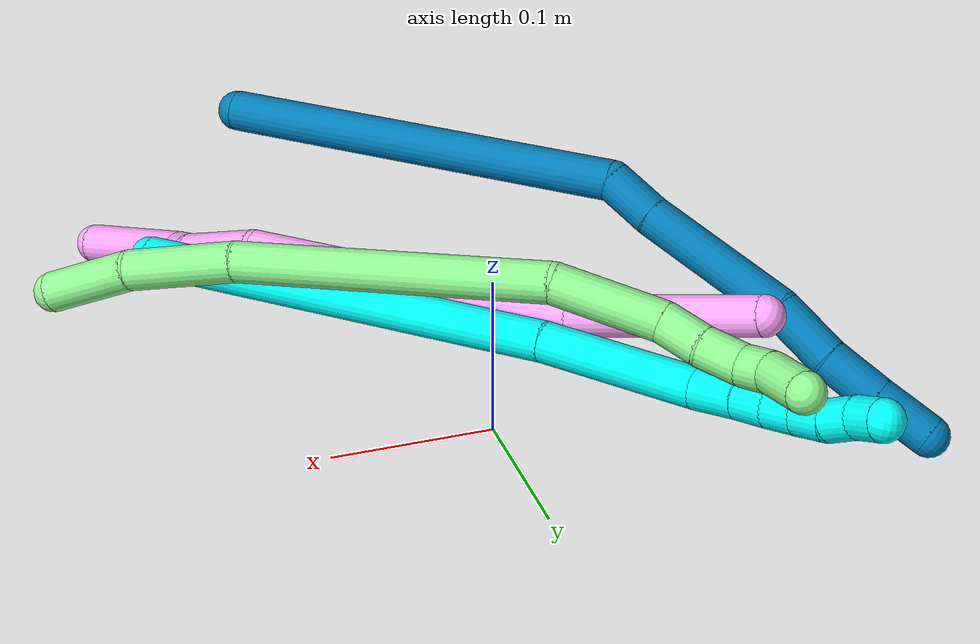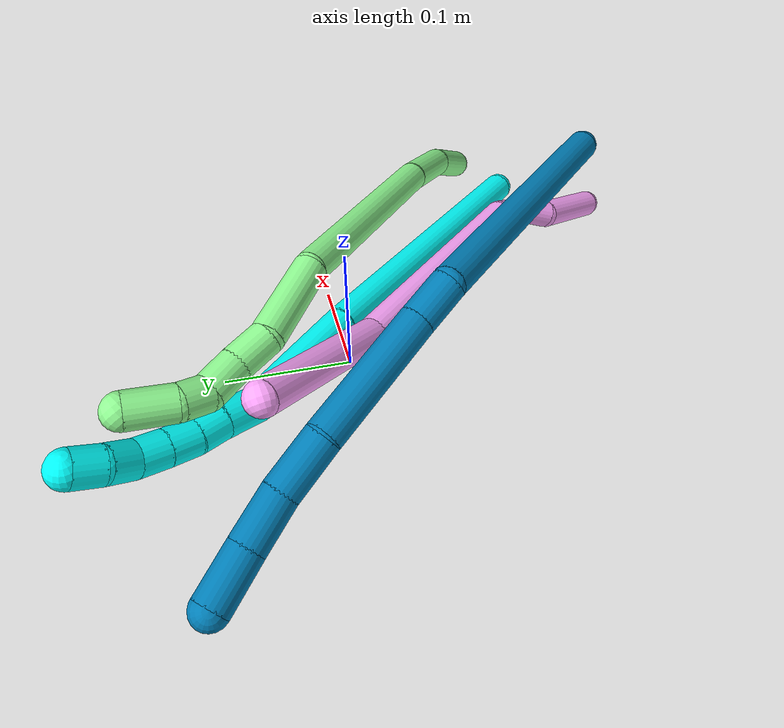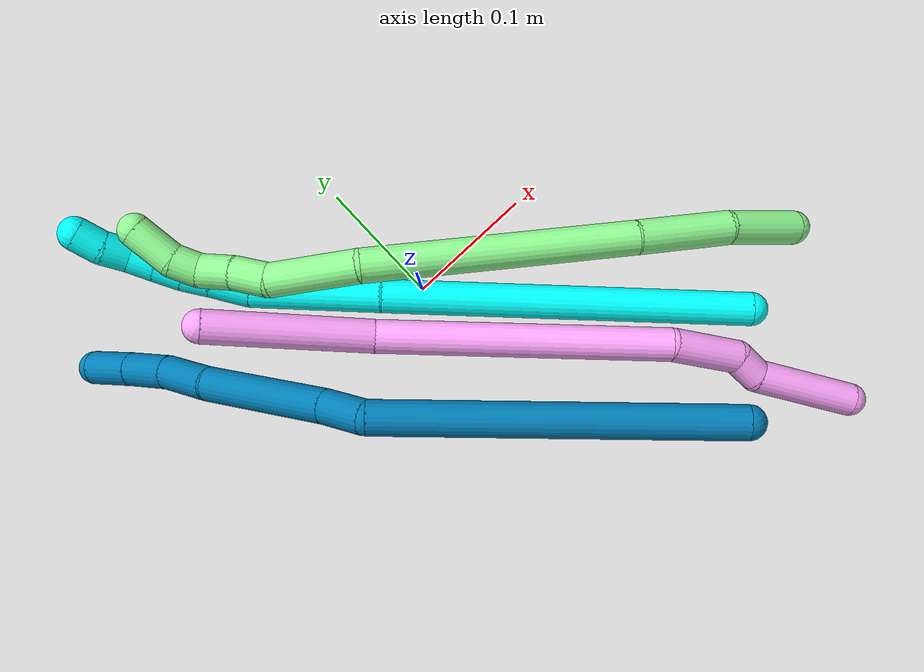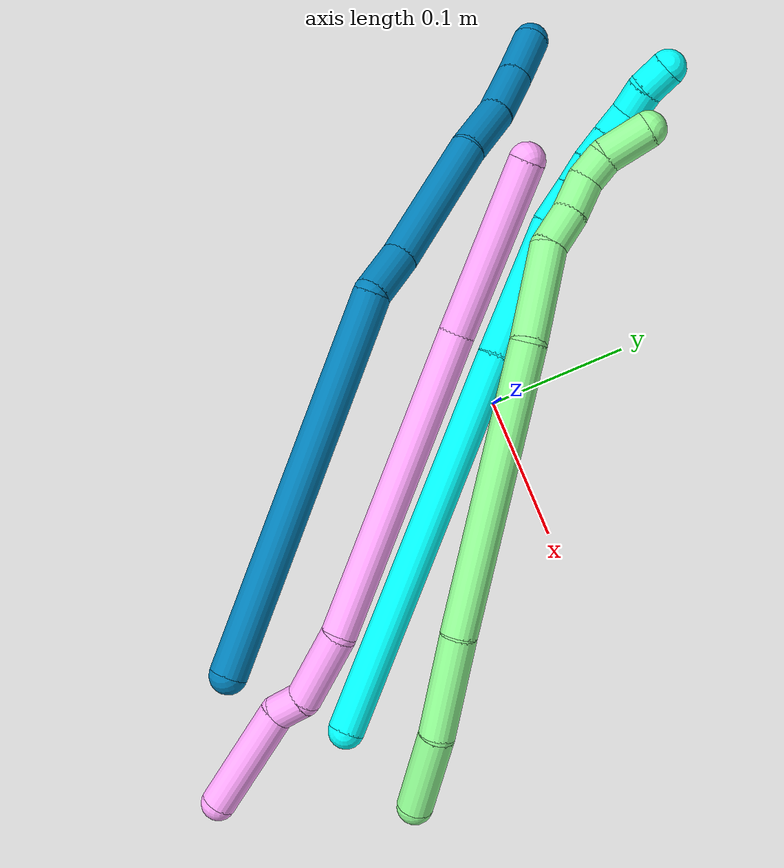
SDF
<sdf version="1.7">
 <world name="default">
  <model name="3">
   <static>0</static>
   <link name="3">
    <collision name="collision-cylinder-e_1_1_4">
     <pose>-0.044812 0.126976 0.019544 -1.41808 -0.335616 0.288624</pose>
     <geometry><cylinder><radius>0.0125</radius><length>0.272125</length></cylinder></geometry>
     <surface>
      <friction><ode><mu>1.16</mu><mu2>1.16</mu2><slip1>0</slip1><slip2>0</slip2></ode></friction>
      <contact><ode><kp>1e+06</kp><kd>1</kd><max_vel>0</max_vel><min_depth>0.001</min_depth></ode></contact>
     </surface>
    </collision>
    <visual name="visual-cylinder-e_1_1_4">
     <pose>-0.044812 0.126976 0.019544 -1.41808 -0.335616 0.288624</pose>
     <geometry><cylinder><radius>0.0125</radius><length>0.272125</length></cylinder></geometry>
     <material><ambient>0.003922 1 0.996078 1</ambient></material>
    </visual>
    <collision name="collision-cylinder-e_2_4_5">
     <pose>-0.105696 0.299578 0.042015 -1.50672 -0.338026 0.317394</pose>
     <geometry><cylinder><radius>0.0125</radius><length>0.096925</length></cylinder></geometry>
     <surface>
      <friction><ode><mu>1.16</mu><mu2>1.16</mu2><slip1>0</slip1><slip2>0</slip2></ode></friction>
      <contact><ode><kp>1e+06</kp><kd>1</kd><max_vel>0</max_vel><min_depth>0.001</min_depth></ode></contact>
     </surface>
    </collision>
    <visual name="visual-cylinder-e_2_4_5">
     <pose>-0.105696 0.299578 0.042015 -1.50672 -0.338026 0.317394</pose>
     <geometry><cylinder><radius>0.0125</radius><length>0.096925</length></cylinder></geometry>
     <material><ambient>0.003922 1 0.996078 1</ambient></material>
    </visual>
    <collision name="collision-cylinder-e_3_5_6">
     <pose>-0.123361 0.359535 0.048272 -1.34249 -0.107921 0.08575</pose>
     <geometry><cylinder><radius>0.0125</radius><length>0.029596</length></cylinder></geometry>
     <surface>
      <friction><ode><mu>1.16</mu><mu2>1.16</mu2><slip1>0</slip1><slip2>0</slip2></ode></friction>
      <contact><ode><kp>1e+06</kp><kd>1</kd><max_vel>0</max_vel><min_depth>0.001</min_depth></ode></contact>
     </surface>
    </collision>
    <visual name="visual-cylinder-e_3_5_6">
     <pose>-0.123361 0.359535 0.048272 -1.34249 -0.107921 0.08575</pose>
     <geometry><cylinder><radius>0.0125</radius><length>0.029596</length></cylinder></geometry>
     <material><ambient>0.003922 1 0.996078 1</ambient></material>
    </visual>
    <collision name="collision-cylinder-e_4_6_7">
     <pose>-0.126472 0.38377 0.053252 -1.4057 -0.149963 0.127111</pose>
     <geometry><cylinder><radius>0.0125</radius><length>0.020311</length></cylinder></geometry>
     <surface>
      <friction><ode><mu>1.16</mu><mu2>1.16</mu2><slip1>0</slip1><slip2>0</slip2></ode></friction>
      <contact><ode><kp>1e+06</kp><kd>1</kd><max_vel>0</max_vel><min_depth>0.001</min_depth></ode></contact>
     </surface>
    </collision>
    <visual name="visual-cylinder-e_4_6_7">
     <pose>-0.126472 0.38377 0.053252 -1.4057 -0.149963 0.127111</pose>
     <geometry><cylinder><radius>0.0125</radius><length>0.020311</length></cylinder></geometry>
     <material><ambient>0.003922 1 0.996078 1</ambient></material>
    </visual>
    <collision name="collision-cylinder-e_5_7_8">
     <pose>-0.128306 0.403672 0.057392 -1.32678 -0.030734 0.024021</pose>
     <geometry><cylinder><radius>0.0125</radius><length>0.020615</length></cylinder></geometry>
     <surface>
      <friction><ode><mu>1.16</mu><mu2>1.16</mu2><slip1>0</slip1><slip2>0</slip2></ode></friction>
      <contact><ode><kp>1e+06</kp><kd>1</kd><max_vel>0</max_vel><min_depth>0.001</min_depth></ode></contact>
     </surface>
    </collision>
    <visual name="visual-cylinder-e_5_7_8">
     <pose>-0.128306 0.403672 0.057392 -1.32678 -0.030734 0.024021</pose>
     <geometry><cylinder><radius>0.0125</radius><length>0.020615</length></cylinder></geometry>
     <material><ambient>0.003922 1 0.996078 1</ambient></material>
    </visual>
    <collision name="collision-cylinder-e_6_8_9">
     <pose>-0.128672 0.423355 0.062583 -1.2987 -0.004888 0.003711</pose>
     <geometry><cylinder><radius>0.0125</radius><length>0.020111</length></cylinder></geometry>
     <surface>
      <friction><ode><mu>1.16</mu><mu2>1.16</mu2><slip1>0</slip1><slip2>0</slip2></ode></friction>
      <contact><ode><kp>1e+06</kp><kd>1</kd><max_vel>0</max_vel><min_depth>0.001</min_depth></ode></contact>
     </surface>
    </collision>
    <visual name="visual-cylinder-e_6_8_9">
     <pose>-0.128672 0.423355 0.062583 -1.2987 -0.004888 0.003711</pose>
     <geometry><cylinder><radius>0.0125</radius><length>0.020111</length></cylinder></geometry>
     <material><ambient>0.003922 1 0.996078 1</ambient></material>
    </visual>
    <collision name="collision-cylinder-e_7_9_10">
     <pose>-0.129135 0.441642 0.070472 -1.02819 -0.041135 0.023233</pose>
     <geometry><cylinder><radius>0.0125</radius><length>0.020105</length></cylinder></geometry>
     <surface>
      <friction><ode><mu>1.16</mu><mu2>1.16</mu2><slip1>0</slip1><slip2>0</slip2></ode></friction>
      <contact><ode><kp>1e+06</kp><kd>1</kd><max_vel>0</max_vel><min_depth>0.001</min_depth></ode></contact>
     </surface>
    </collision>
    <visual name="visual-cylinder-e_7_9_10">
     <pose>-0.129135 0.441642 0.070472 -1.02819 -0.041135 0.023233</pose>
     <geometry><cylinder><radius>0.0125</radius><length>0.020105</length></cylinder></geometry>
     <material><ambient>0.003922 1 0.996078 1</ambient></material>
    </visual>
    <collision name="collision-cylinder-e_8_10_2">
     <pose>-0.127817 0.459389 0.079594 -1.16448 0.172121 -0.113479</pose>
     <geometry><cylinder><radius>0.0125</radius><length>0.020212</length></cylinder></geometry>
     <surface>
      <friction><ode><mu>1.16</mu><mu2>1.16</mu2><slip1>0</slip1><slip2>0</slip2></ode></friction>
      <contact><ode><kp>1e+06</kp><kd>1</kd><max_vel>0</max_vel><min_depth>0.001</min_depth></ode></contact>
     </surface>
    </collision>
    <visual name="visual-cylinder-e_8_10_2">
     <pose>-0.127817 0.459389 0.079594 -1.16448 0.172121 -0.113479</pose>
     <geometry><cylinder><radius>0.0125</radius><length>0.020212</length></cylinder></geometry>
     <material><ambient>0.003922 1 0.996078 1</ambient></material>
    </visual>
    <collision name="collision-sphere-2">
     <pose>-0.126086 0.468535 0.083529 0 -0 0</pose>
     <geometry><sphere><radius>0.0125</radius></sphere></geometry>
     <surface>
      <friction><ode><mu>1.16</mu><mu2>1.16</mu2><slip1>0</slip1><slip2>0</slip2></ode></friction>
      <contact><ode><kp>1e+06</kp><kd>1</kd><max_vel>0</max_vel><min_depth>0.001</min_depth></ode></contact>
     </surface>
    </collision>
    <visual name="visual-sphere-2">
     <pose>-0.126086 0.468535 0.083529 0 -0 0</pose>
     <geometry><sphere><radius>0.0125</radius></sphere></geometry>
     <material><ambient>0.003922 1 0.996078 1</ambient></material>
    </visual>
    <collision name="collision-sphere-10">
     <pose>-0.129548 0.450243 0.075658 0 -0 0</pose>
     <geometry><sphere><radius>0.0125</radius></sphere></geometry>
     <surface>
      <friction><ode><mu>1.16</mu><mu2>1.16</mu2><slip1>0</slip1><slip2>0</slip2></ode></friction>
      <contact><ode><kp>1e+06</kp><kd>1</kd><max_vel>0</max_vel><min_depth>0.001</min_depth></ode></contact>
     </surface>
    </collision>
    <visual name="visual-sphere-10">
     <pose>-0.129548 0.450243 0.075658 0 -0 0</pose>
     <geometry><sphere><radius>0.0125</radius></sphere></geometry>
     <material><ambient>0.003922 1 0.996078 1</ambient></material>
    </visual>
    <collision name="collision-sphere-9">
     <pose>-0.128721 0.433041 0.065286 0 -0 0</pose>
     <geometry><sphere><radius>0.0125</radius></sphere></geometry>
     <surface>
      <friction><ode><mu>1.16</mu><mu2>1.16</mu2><slip1>0</slip1><slip2>0</slip2></ode></friction>
      <contact><ode><kp>1e+06</kp><kd>1</kd><max_vel>0</max_vel><min_depth>0.001</min_depth></ode></contact>
     </surface>
    </collision>
    <visual name="visual-sphere-9">
     <pose>-0.128721 0.433041 0.065286 0 -0 0</pose>
     <geometry><sphere><radius>0.0125</radius></sphere></geometry>
     <material><ambient>0.003922 1 0.996078 1</ambient></material>
    </visual>
    <collision name="collision-sphere-4">
     <pose>-0.089625 0.253952 0.039087 0 -0 0</pose>
     <geometry><sphere><radius>0.0125</radius></sphere></geometry>
     <surface>
      <friction><ode><mu>1.16</mu><mu2>1.16</mu2><slip1>0</slip1><slip2>0</slip2></ode></friction>
      <contact><ode><kp>1e+06</kp><kd>1</kd><max_vel>0</max_vel><min_depth>0.001</min_depth></ode></contact>
     </surface>
    </collision>
    <visual name="visual-sphere-4">
     <pose>-0.089625 0.253952 0.039087 0 -0 0</pose>
     <geometry><sphere><radius>0.0125</radius></sphere></geometry>
     <material><ambient>0.003922 1 0.996078 1</ambient></material>
    </visual>
    <collision name="collision-sphere-1">
     <geometry><sphere><radius>0.0125</radius></sphere></geometry>
     <surface>
      <friction><ode><mu>1.16</mu><mu2>1.16</mu2><slip1>0</slip1><slip2>0</slip2></ode></friction>
      <contact><ode><kp>1e+06</kp><kd>1</kd><max_vel>0</max_vel><min_depth>0.001</min_depth></ode></contact>
     </surface>
    </collision>
    <visual name="visual-sphere-1">
     <geometry><sphere><radius>0.0125</radius></sphere></geometry>
     <material><ambient>0.003922 1 0.996078 1</ambient></material>
    </visual>
    <collision name="collision-sphere-8">
     <pose>-0.128623 0.41367 0.059881 0 -0 0</pose>
     <geometry><sphere><radius>0.0125</radius></sphere></geometry>
     <surface>
      <friction><ode><mu>1.16</mu><mu2>1.16</mu2><slip1>0</slip1><slip2>0</slip2></ode></friction>
      <contact><ode><kp>1e+06</kp><kd>1</kd><max_vel>0</max_vel><min_depth>0.001</min_depth></ode></contact>
     </surface>
    </collision>
    <visual name="visual-sphere-8">
     <pose>-0.128623 0.41367 0.059881 0 -0 0</pose>
     <geometry><sphere><radius>0.0125</radius></sphere></geometry>
     <material><ambient>0.003922 1 0.996078 1</ambient></material>
    </visual>
    <collision name="collision-sphere-5">
     <pose>-0.121767 0.345204 0.044942 0 -0 0</pose>
     <geometry><sphere><radius>0.0125</radius></sphere></geometry>
     <surface>
      <friction><ode><mu>1.16</mu><mu2>1.16</mu2><slip1>0</slip1><slip2>0</slip2></ode></friction>
      <contact><ode><kp>1e+06</kp><kd>1</kd><max_vel>0</max_vel><min_depth>0.001</min_depth></ode></contact>
     </surface>
    </collision>
    <visual name="visual-sphere-5">
     <pose>-0.121767 0.345204 0.044942 0 -0 0</pose>
     <geometry><sphere><radius>0.0125</radius></sphere></geometry>
     <material><ambient>0.003922 1 0.996078 1</ambient></material>
    </visual>
    <collision name="collision-sphere-6">
     <pose>-0.124955 0.373865 0.051602 0 -0 0</pose>
     <geometry><sphere><radius>0.0125</radius></sphere></geometry>
     <surface>
      <friction><ode><mu>1.16</mu><mu2>1.16</mu2><slip1>0</slip1><slip2>0</slip2></ode></friction>
      <contact><ode><kp>1e+06</kp><kd>1</kd><max_vel>0</max_vel><min_depth>0.001</min_depth></ode></contact>
     </surface>
    </collision>
    <visual name="visual-sphere-6">
     <pose>-0.124955 0.373865 0.051602 0 -0 0</pose>
     <geometry><sphere><radius>0.0125</radius></sphere></geometry>
     <material><ambient>0.003922 1 0.996078 1</ambient></material>
    </visual>
    <collision name="collision-sphere-7">
     <pose>-0.12799 0.393675 0.054903 0 -0 0</pose>
     <geometry><sphere><radius>0.0125</radius></sphere></geometry>
     <surface>
      <friction><ode><mu>1.16</mu><mu2>1.16</mu2><slip1>0</slip1><slip2>0</slip2></ode></friction>
      <contact><ode><kp>1e+06</kp><kd>1</kd><max_vel>0</max_vel><min_depth>0.001</min_depth></ode></contact>
     </surface>
    </collision>
    <visual name="visual-sphere-7">
     <pose>-0.12799 0.393675 0.054903 0 -0 0</pose>
     <geometry><sphere><radius>0.0125</radius></sphere></geometry>
     <material><ambient>0.003922 1 0.996078 1</ambient></material>
    </visual>
    <inertial>
     <pose>-0.078143 0.234051 0.034736 0 -0 0</pose>
     <mass>0.5</mass>
     <inertia>
      <ixx>0.00208</ixx>
      <ixy>0</ixy>
      <ixz>0</ixz>
      <iyy>0.000934</iyy>
      <iyz>0</iyz>
      <izz>-0.001072</izz>
     </inertia>
    </inertial>
   </link>
   <pose>0.165177 -0.181422 0.052896 -0.057444 -0.176981 0.442178</pose>
  </model>
  <model name="4">
   <static>0</static>
   <link name="4">
    <collision name="collision-cylinder-e_1_1_4">
     <pose>-0.014308 0.037492 0.003828 -1.46904 -0.362853 0.328352</pose>
     <geometry><cylinder><radius>0.0125</radius><length>0.080624</length></cylinder></geometry>
     <surface>
      <friction><ode><mu>1.16</mu><mu2>1.16</mu2><slip1>0</slip1><slip2>0</slip2></ode></friction>
      <contact><ode><kp>1e+06</kp><kd>1</kd><max_vel>0</max_vel><min_depth>0.001</min_depth></ode></contact>
     </surface>
    </collision>
    <visual name="visual-cylinder-e_1_1_4">
     <pose>-0.014308 0.037492 0.003828 -1.46904 -0.362853 0.328352</pose>
     <geometry><cylinder><radius>0.0125</radius><length>0.080624</length></cylinder></geometry>
     <material><ambient>1 0.65098 0.996078 1</ambient></material>
    </visual>
    <collision name="collision-cylinder-e_2_4_5">
     <pose>-0.034596 0.084053 0.004009 -1.95318 -0.549024 0.789826</pose>
     <geometry><cylinder><radius>0.0125</radius><length>0.022915</length></cylinder></geometry>
     <surface>
      <friction><ode><mu>1.16</mu><mu2>1.16</mu2><slip1>0</slip1><slip2>0</slip2></ode></friction>
      <contact><ode><kp>1e+06</kp><kd>1</kd><max_vel>0</max_vel><min_depth>0.001</min_depth></ode></contact>
     </surface>
    </collision>
    <visual name="visual-cylinder-e_2_4_5">
     <pose>-0.034596 0.084053 0.004009 -1.95318 -0.549024 0.789826</pose>
     <geometry><cylinder><radius>0.0125</radius><length>0.022915</length></cylinder></geometry>
     <material><ambient>1 0.65098 0.996078 1</ambient></material>
    </visual>
    <collision name="collision-cylinder-e_3_5_6">
     <pose>-0.047456 0.11944 0.002595 -1.48619 -0.254842 0.23434</pose>
     <geometry><cylinder><radius>0.0125</radius><length>0.054591</length></cylinder></geometry>
     <surface>
      <friction><ode><mu>1.16</mu><mu2>1.16</mu2><slip1>0</slip1><slip2>0</slip2></ode></friction>
      <contact><ode><kp>1e+06</kp><kd>1</kd><max_vel>0</max_vel><min_depth>0.001</min_depth></ode></contact>
     </surface>
    </collision>
    <visual name="visual-cylinder-e_3_5_6">
     <pose>-0.047456 0.11944 0.002595 -1.48619 -0.254842 0.23434</pose>
     <geometry><cylinder><radius>0.0125</radius><length>0.054591</length></cylinder></geometry>
     <material><ambient>1 0.65098 0.996078 1</ambient></material>
    </visual>
    <collision name="collision-cylinder-e_4_6_7">
     <pose>-0.090146 0.239869 0.046255 -1.15611 -0.335116 0.219808</pose>
     <geometry><cylinder><radius>0.0125</radius><length>0.217764</length></cylinder></geometry>
     <surface>
      <friction><ode><mu>1.16</mu><mu2>1.16</mu2><slip1>0</slip1><slip2>0</slip2></ode></friction>
      <contact><ode><kp>1e+06</kp><kd>1</kd><max_vel>0</max_vel><min_depth>0.001</min_depth></ode></contact>
     </surface>
    </collision>
    <visual name="visual-cylinder-e_4_6_7">
     <pose>-0.090146 0.239869 0.046255 -1.15611 -0.335116 0.219808</pose>
     <geometry><cylinder><radius>0.0125</radius><length>0.217764</length></cylinder></geometry>
     <material><ambient>1 0.65098 0.996078 1</ambient></material>
    </visual>
    <collision name="collision-cylinder-e_5_7_2">
     <pose>-0.139454 0.393109 0.100799 -1.35251 -0.219285 0.176225</pose>
     <geometry><cylinder><radius>0.0125</radius><length>0.124106</length></cylinder></geometry>
     <surface>
      <friction><ode><mu>1.16</mu><mu2>1.16</mu2><slip1>0</slip1><slip2>0</slip2></ode></friction>
      <contact><ode><kp>1e+06</kp><kd>1</kd><max_vel>0</max_vel><min_depth>0.001</min_depth></ode></contact>
     </surface>
    </collision>
    <visual name="visual-cylinder-e_5_7_2">
     <pose>-0.139454 0.393109 0.100799 -1.35251 -0.219285 0.176225</pose>
     <geometry><cylinder><radius>0.0125</radius><length>0.124106</length></cylinder></geometry>
     <material><ambient>1 0.65098 0.996078 1</ambient></material>
    </visual>
    <collision name="collision-sphere-2">
     <pose>-0.152952 0.452239 0.113915 0 -0 0</pose>
     <geometry><sphere><radius>0.0125</radius></sphere></geometry>
     <surface>
      <friction><ode><mu>1.16</mu><mu2>1.16</mu2><slip1>0</slip1><slip2>0</slip2></ode></friction>
      <contact><ode><kp>1e+06</kp><kd>1</kd><max_vel>0</max_vel><min_depth>0.001</min_depth></ode></contact>
     </surface>
    </collision>
    <visual name="visual-sphere-2">
     <pose>-0.152952 0.452239 0.113915 0 -0 0</pose>
     <geometry><sphere><radius>0.0125</radius></sphere></geometry>
     <material><ambient>1 0.65098 0.996078 1</ambient></material>
    </visual>
    <collision name="collision-sphere-7">
     <pose>-0.125955 0.33398 0.087683 0 -0 0</pose>
     <geometry><sphere><radius>0.0125</radius></sphere></geometry>
     <surface>
      <friction><ode><mu>1.16</mu><mu2>1.16</mu2><slip1>0</slip1><slip2>0</slip2></ode></friction>
      <contact><ode><kp>1e+06</kp><kd>1</kd><max_vel>0</max_vel><min_depth>0.001</min_depth></ode></contact>
     </surface>
    </collision>
    <visual name="visual-sphere-7">
     <pose>-0.125955 0.33398 0.087683 0 -0 0</pose>
     <geometry><sphere><radius>0.0125</radius></sphere></geometry>
     <material><ambient>1 0.65098 0.996078 1</ambient></material>
    </visual>
    <collision name="collision-sphere-6">
     <pose>-0.054337 0.145759 0.004827 0 -0 0</pose>
     <geometry><sphere><radius>0.0125</radius></sphere></geometry>
     <surface>
      <friction><ode><mu>1.16</mu><mu2>1.16</mu2><slip1>0</slip1><slip2>0</slip2></ode></friction>
      <contact><ode><kp>1e+06</kp><kd>1</kd><max_vel>0</max_vel><min_depth>0.001</min_depth></ode></contact>
     </surface>
    </collision>
    <visual name="visual-sphere-6">
     <pose>-0.054337 0.145759 0.004827 0 -0 0</pose>
     <geometry><sphere><radius>0.0125</radius></sphere></geometry>
     <material><ambient>1 0.65098 0.996078 1</ambient></material>
    </visual>
    <collision name="collision-sphere-5">
     <pose>-0.040576 0.09312 0.000362 0 -0 0</pose>
     <geometry><sphere><radius>0.0125</radius></sphere></geometry>
     <surface>
      <friction><ode><mu>1.16</mu><mu2>1.16</mu2><slip1>0</slip1><slip2>0</slip2></ode></friction>
      <contact><ode><kp>1e+06</kp><kd>1</kd><max_vel>0</max_vel><min_depth>0.001</min_depth></ode></contact>
     </surface>
    </collision>
    <visual name="visual-sphere-5">
     <pose>-0.040576 0.09312 0.000362 0 -0 0</pose>
     <geometry><sphere><radius>0.0125</radius></sphere></geometry>
     <material><ambient>1 0.65098 0.996078 1</ambient></material>
    </visual>
    <collision name="collision-sphere-1">
     <geometry><sphere><radius>0.0125</radius></sphere></geometry>
     <surface>
      <friction><ode><mu>1.16</mu><mu2>1.16</mu2><slip1>0</slip1><slip2>0</slip2></ode></friction>
      <contact><ode><kp>1e+06</kp><kd>1</kd><max_vel>0</max_vel><min_depth>0.001</min_depth></ode></contact>
     </surface>
    </collision>
    <visual name="visual-sphere-1">
     <geometry><sphere><radius>0.0125</radius></sphere></geometry>
     <material><ambient>1 0.65098 0.996078 1</ambient></material>
    </visual>
    <collision name="collision-sphere-4">
     <pose>-0.028617 0.074985 0.007656 0 -0 0</pose>
     <geometry><sphere><radius>0.0125</radius></sphere></geometry>
     <surface>
      <friction><ode><mu>1.16</mu><mu2>1.16</mu2><slip1>0</slip1><slip2>0</slip2></ode></friction>
      <contact><ode><kp>1e+06</kp><kd>1</kd><max_vel>0</max_vel><min_depth>0.001</min_depth></ode></contact>
     </surface>
    </collision>
    <visual name="visual-sphere-4">
     <pose>-0.028617 0.074985 0.007656 0 -0 0</pose>
     <geometry><sphere><radius>0.0125</radius></sphere></geometry>
     <material><ambient>1 0.65098 0.996078 1</ambient></material>
    </visual>
    <inertial>
     <pose>-0.082949 0.224982 0.046249 0 -0 0</pose>
     <mass>0.5</mass>
     <inertia>
      <ixx>0.00123</ixx>
      <ixy>0</ixy>
      <ixz>0</ixz>
      <iyy>0.000713</iyy>
      <iyz>0</iyz>
      <izz>-0.000616</izz>
     </inertia>
    </inertial>
   </link>
   <pose>0.182047 -0.286897 0.01211 2.48487 -0.53062 -1.93608</pose>
  </model>
  <model name="9">
   <static>0</static>
   <link name="9">
    <collision name="collision-cylinder-e_1_1_4">
     <pose>-0.022189 0.110664 0.062983 -1.05338 -0.172528 0.100486</pose>
     <geometry><cylinder><radius>0.0125</radius><length>0.258501</length></cylinder></geometry>
     <surface>
      <friction><ode><mu>1.16</mu><mu2>1.16</mu2><slip1>0</slip1><slip2>0</slip2></ode></friction>
      <contact><ode><kp>1e+06</kp><kd>1</kd><max_vel>0</max_vel><min_depth>0.001</min_depth></ode></contact>
     </surface>
    </collision>
    <visual name="visual-cylinder-e_1_1_4">
     <pose>-0.022189 0.110664 0.062983 -1.05338 -0.172528 0.100486</pose>
     <geometry><cylinder><radius>0.0125</radius><length>0.258501</length></cylinder></geometry>
     <material><ambient>0 0.490196 0.709804 1</ambient></material>
    </visual>
    <collision name="collision-cylinder-e_2_4_5">
     <pose>-0.048305 0.23739 0.125877 -1.57634 -0.239802 0.241121</pose>
     <geometry><cylinder><radius>0.0125</radius><length>0.033072</length></cylinder></geometry>
     <surface>
      <friction><ode><mu>1.16</mu><mu2>1.16</mu2><slip1>0</slip1><slip2>0</slip2></ode></friction>
      <contact><ode><kp>1e+06</kp><kd>1</kd><max_vel>0</max_vel><min_depth>0.001</min_depth></ode></contact>
     </surface>
    </collision>
    <visual name="visual-cylinder-e_2_4_5">
     <pose>-0.048305 0.23739 0.125877 -1.57634 -0.239802 0.241121</pose>
     <geometry><cylinder><radius>0.0125</radius><length>0.033072</length></cylinder></geometry>
     <material><ambient>0 0.490196 0.709804 1</ambient></material>
    </visual>
    <collision name="collision-cylinder-e_3_5_6">
     <pose>-0.064428 0.299445 0.130108 -1.47713 -0.258118 0.235229</pose>
     <geometry><cylinder><radius>0.0125</radius><length>0.095554</length></cylinder></geometry>
     <surface>
      <friction><ode><mu>1.16</mu><mu2>1.16</mu2><slip1>0</slip1><slip2>0</slip2></ode></friction>
      <contact><ode><kp>1e+06</kp><kd>1</kd><max_vel>0</max_vel><min_depth>0.001</min_depth></ode></contact>
     </surface>
    </collision>
    <visual name="visual-cylinder-e_3_5_6">
     <pose>-0.064428 0.299445 0.130108 -1.47713 -0.258118 0.235229</pose>
     <geometry><cylinder><radius>0.0125</radius><length>0.095554</length></cylinder></geometry>
     <material><ambient>0 0.490196 0.709804 1</ambient></material>
    </visual>
    <collision name="collision-cylinder-e_4_6_7">
     <pose>-0.082353 0.364667 0.132728 -1.659 -0.288497 0.314716</pose>
     <geometry><cylinder><radius>0.0125</radius><length>0.040275</length></cylinder></geometry>
     <surface>
      <friction><ode><mu>1.16</mu><mu2>1.16</mu2><slip1>0</slip1><slip2>0</slip2></ode></friction>
      <contact><ode><kp>1e+06</kp><kd>1</kd><max_vel>0</max_vel><min_depth>0.001</min_depth></ode></contact>
     </surface>
    </collision>
    <visual name="visual-cylinder-e_4_6_7">
     <pose>-0.082353 0.364667 0.132728 -1.659 -0.288497 0.314716</pose>
     <geometry><cylinder><radius>0.0125</radius><length>0.040275</length></cylinder></geometry>
     <material><ambient>0 0.490196 0.709804 1</ambient></material>
    </visual>
    <collision name="collision-cylinder-e_5_7_8">
     <pose>-0.094842 0.400323 0.131596 -1.53623 -0.390191 0.37725</pose>
     <geometry><cylinder><radius>0.0125</radius><length>0.035543</length></cylinder></geometry>
     <surface>
      <friction><ode><mu>1.16</mu><mu2>1.16</mu2><slip1>0</slip1><slip2>0</slip2></ode></friction>
      <contact><ode><kp>1e+06</kp><kd>1</kd><max_vel>0</max_vel><min_depth>0.001</min_depth></ode></contact>
     </surface>
    </collision>
    <visual name="visual-cylinder-e_5_7_8">
     <pose>-0.094842 0.400323 0.131596 -1.53623 -0.390191 0.37725</pose>
     <geometry><cylinder><radius>0.0125</radius><length>0.035543</length></cylinder></geometry>
     <material><ambient>0 0.490196 0.709804 1</ambient></material>
    </visual>
    <collision name="collision-cylinder-e_6_8_2">
     <pose>-0.108955 0.433718 0.133274 -1.50544 -0.408113 0.382923</pose>
     <geometry><cylinder><radius>0.0125</radius><length>0.037055</length></cylinder></geometry>
     <surface>
      <friction><ode><mu>1.16</mu><mu2>1.16</mu2><slip1>0</slip1><slip2>0</slip2></ode></friction>
      <contact><ode><kp>1e+06</kp><kd>1</kd><max_vel>0</max_vel><min_depth>0.001</min_depth></ode></contact>
     </surface>
    </collision>
    <visual name="visual-cylinder-e_6_8_2">
     <pose>-0.108955 0.433718 0.133274 -1.50544 -0.408113 0.382923</pose>
     <geometry><cylinder><radius>0.0125</radius><length>0.037055</length></cylinder></geometry>
     <material><ambient>0 0.490196 0.709804 1</ambient></material>
    </visual>
    <collision name="collision-sphere-2">
     <pose>-0.116308 0.450688 0.134385 0 -0 0</pose>
     <geometry><sphere><radius>0.0125</radius></sphere></geometry>
     <surface>
      <friction><ode><mu>1.16</mu><mu2>1.16</mu2><slip1>0</slip1><slip2>0</slip2></ode></friction>
      <contact><ode><kp>1e+06</kp><kd>1</kd><max_vel>0</max_vel><min_depth>0.001</min_depth></ode></contact>
     </surface>
    </collision>
    <visual name="visual-sphere-2">
     <pose>-0.116308 0.450688 0.134385 0 -0 0</pose>
     <geometry><sphere><radius>0.0125</radius></sphere></geometry>
     <material><ambient>0 0.490196 0.709804 1</ambient></material>
    </visual>
    <collision name="collision-sphere-4">
     <pose>-0.044378 0.221327 0.125966 0 -0 0</pose>
     <geometry><sphere><radius>0.0125</radius></sphere></geometry>
     <surface>
      <friction><ode><mu>1.16</mu><mu2>1.16</mu2><slip1>0</slip1><slip2>0</slip2></ode></friction>
      <contact><ode><kp>1e+06</kp><kd>1</kd><max_vel>0</max_vel><min_depth>0.001</min_depth></ode></contact>
     </surface>
    </collision>
    <visual name="visual-sphere-4">
     <pose>-0.044378 0.221327 0.125966 0 -0 0</pose>
     <geometry><sphere><radius>0.0125</radius></sphere></geometry>
     <material><ambient>0 0.490196 0.709804 1</ambient></material>
    </visual>
    <collision name="collision-sphere-1">
     <geometry><sphere><radius>0.0125</radius></sphere></geometry>
     <surface>
      <friction><ode><mu>1.16</mu><mu2>1.16</mu2><slip1>0</slip1><slip2>0</slip2></ode></friction>
      <contact><ode><kp>1e+06</kp><kd>1</kd><max_vel>0</max_vel><min_depth>0.001</min_depth></ode></contact>
     </surface>
    </collision>
    <visual name="visual-sphere-1">
     <geometry><sphere><radius>0.0125</radius></sphere></geometry>
     <material><ambient>0 0.490196 0.709804 1</ambient></material>
    </visual>
    <collision name="collision-sphere-8">
     <pose>-0.101602 0.416749 0.132164 0 -0 0</pose>
     <geometry><sphere><radius>0.0125</radius></sphere></geometry>
     <surface>
      <friction><ode><mu>1.16</mu><mu2>1.16</mu2><slip1>0</slip1><slip2>0</slip2></ode></friction>
      <contact><ode><kp>1e+06</kp><kd>1</kd><max_vel>0</max_vel><min_depth>0.001</min_depth></ode></contact>
     </surface>
    </collision>
    <visual name="visual-sphere-8">
     <pose>-0.101602 0.416749 0.132164 0 -0 0</pose>
     <geometry><sphere><radius>0.0125</radius></sphere></geometry>
     <material><ambient>0 0.490196 0.709804 1</ambient></material>
    </visual>
    <collision name="collision-sphere-5">
     <pose>-0.052233 0.253453 0.125788 0 -0 0</pose>
     <geometry><sphere><radius>0.0125</radius></sphere></geometry>
     <surface>
      <friction><ode><mu>1.16</mu><mu2>1.16</mu2><slip1>0</slip1><slip2>0</slip2></ode></friction>
      <contact><ode><kp>1e+06</kp><kd>1</kd><max_vel>0</max_vel><min_depth>0.001</min_depth></ode></contact>
     </surface>
    </collision>
    <visual name="visual-sphere-5">
     <pose>-0.052233 0.253453 0.125788 0 -0 0</pose>
     <geometry><sphere><radius>0.0125</radius></sphere></geometry>
     <material><ambient>0 0.490196 0.709804 1</ambient></material>
    </visual>
    <collision name="collision-sphere-6">
     <pose>-0.076624 0.345437 0.134429 0 -0 0</pose>
     <geometry><sphere><radius>0.0125</radius></sphere></geometry>
     <surface>
      <friction><ode><mu>1.16</mu><mu2>1.16</mu2><slip1>0</slip1><slip2>0</slip2></ode></friction>
      <contact><ode><kp>1e+06</kp><kd>1</kd><max_vel>0</max_vel><min_depth>0.001</min_depth></ode></contact>
     </surface>
    </collision>
    <visual name="visual-sphere-6">
     <pose>-0.076624 0.345437 0.134429 0 -0 0</pose>
     <geometry><sphere><radius>0.0125</radius></sphere></geometry>
     <material><ambient>0 0.490196 0.709804 1</ambient></material>
    </visual>
    <collision name="collision-sphere-7">
     <pose>-0.088083 0.383897 0.131028 0 -0 0</pose>
     <geometry><sphere><radius>0.0125</radius></sphere></geometry>
     <surface>
      <friction><ode><mu>1.16</mu><mu2>1.16</mu2><slip1>0</slip1><slip2>0</slip2></ode></friction>
      <contact><ode><kp>1e+06</kp><kd>1</kd><max_vel>0</max_vel><min_depth>0.001</min_depth></ode></contact>
     </surface>
    </collision>
    <visual name="visual-sphere-7">
     <pose>-0.088083 0.383897 0.131028 0 -0 0</pose>
     <geometry><sphere><radius>0.0125</radius></sphere></geometry>
     <material><ambient>0 0.490196 0.709804 1</ambient></material>
    </visual>
    <inertial>
     <pose>-0.04843 0.220116 0.095676 0 -0 0</pose>
     <mass>0.5</mass>
     <inertia>
      <ixx>0.001671</ixx>
      <ixy>0</ixy>
      <ixz>0</ixz>
      <iyy>0.000951</iyy>
      <iyz>0</iyz>
      <izz>-0.001049</izz>
     </inertia>
    </inertial>
   </link>
   <pose>0.094372 -0.229923 0.121658 -0.362919 -0.635719 0.578787</pose>
  </model>
  <model name="13">
   <static>0</static>
   <link name="13">
    <collision name="collision-cylinder-e_1_1_4">
     <pose>-0.028623 0.005638 0.004379 -0.91044 -1.32639 0.730524</pose>
     <geometry><cylinder><radius>0.0125</radius><length>0.058999</length></cylinder></geometry>
     <surface>
      <friction><ode><mu>1.16</mu><mu2>1.16</mu2><slip1>0</slip1><slip2>0</slip2></ode></friction>
      <contact><ode><kp>1e+06</kp><kd>1</kd><max_vel>0</max_vel><min_depth>0.001</min_depth></ode></contact>
     </surface>
    </collision>
    <visual name="visual-cylinder-e_1_1_4">
     <pose>-0.028623 0.005638 0.004379 -0.91044 -1.32639 0.730524</pose>
     <geometry><cylinder><radius>0.0125</radius><length>0.058999</length></cylinder></geometry>
     <material><ambient>0.564706 0.984314 0.572549 1</ambient></material>
    </visual>
    <collision name="collision-cylinder-e_2_4_5">
     <pose>-0.090874 0.021957 0.007637 -1.67533 -1.26165 1.36285</pose>
     <geometry><cylinder><radius>0.0125</radius><length>0.070604</length></cylinder></geometry>
     <surface>
      <friction><ode><mu>1.16</mu><mu2>1.16</mu2><slip1>0</slip1><slip2>0</slip2></ode></friction>
      <contact><ode><kp>1e+06</kp><kd>1</kd><max_vel>0</max_vel><min_depth>0.001</min_depth></ode></contact>
     </surface>
    </collision>
    <visual name="visual-cylinder-e_2_4_5">
     <pose>-0.090874 0.021957 0.007637 -1.67533 -1.26165 1.36285</pose>
     <geometry><cylinder><radius>0.0125</radius><length>0.070604</length></cylinder></geometry>
     <material><ambient>0.564706 0.984314 0.572549 1</ambient></material>
    </visual>
    <collision name="collision-cylinder-e_3_5_6">
     <pose>-0.213451 0.072971 -0.003631 -1.81726 -1.13344 1.36917</pose>
     <geometry><cylinder><radius>0.0125</radius><length>0.196382</length></cylinder></geometry>
     <surface>
      <friction><ode><mu>1.16</mu><mu2>1.16</mu2><slip1>0</slip1><slip2>0</slip2></ode></friction>
      <contact><ode><kp>1e+06</kp><kd>1</kd><max_vel>0</max_vel><min_depth>0.001</min_depth></ode></contact>
     </surface>
    </collision>
    <visual name="visual-cylinder-e_3_5_6">
     <pose>-0.213451 0.072971 -0.003631 -1.81726 -1.13344 1.36917</pose>
     <geometry><cylinder><radius>0.0125</radius><length>0.196382</length></cylinder></geometry>
     <material><ambient>0.564706 0.984314 0.572549 1</ambient></material>
    </visual>
    <collision name="collision-cylinder-e_4_6_7">
     <pose>-0.327501 0.132904 -0.024103 -2.05564 -0.847687 1.28398</pose>
     <geometry><cylinder><radius>0.0125</radius><length>0.06696</length></cylinder></geometry>
     <surface>
      <friction><ode><mu>1.16</mu><mu2>1.16</mu2><slip1>0</slip1><slip2>0</slip2></ode></friction>
      <contact><ode><kp>1e+06</kp><kd>1</kd><max_vel>0</max_vel><min_depth>0.001</min_depth></ode></contact>
     </surface>
    </collision>
    <visual name="visual-cylinder-e_4_6_7">
     <pose>-0.327501 0.132904 -0.024103 -2.05564 -0.847687 1.28398</pose>
     <geometry><cylinder><radius>0.0125</radius><length>0.06696</length></cylinder></geometry>
     <material><ambient>0.564706 0.984314 0.572549 1</ambient></material>
    </visual>
    <collision name="collision-cylinder-e_5_7_8">
     <pose>-0.361074 0.163273 -0.035252 -1.64712 -0.66516 0.713739</pose>
     <geometry><cylinder><radius>0.0125</radius><length>0.027451</length></cylinder></geometry>
     <surface>
      <friction><ode><mu>1.16</mu><mu2>1.16</mu2><slip1>0</slip1><slip2>0</slip2></ode></friction>
      <contact><ode><kp>1e+06</kp><kd>1</kd><max_vel>0</max_vel><min_depth>0.001</min_depth></ode></contact>
     </surface>
    </collision>
    <visual name="visual-cylinder-e_5_7_8">
     <pose>-0.361074 0.163273 -0.035252 -1.64712 -0.66516 0.713739</pose>
     <geometry><cylinder><radius>0.0125</radius><length>0.027451</length></cylinder></geometry>
     <material><ambient>0.564706 0.984314 0.572549 1</ambient></material>
    </visual>
    <collision name="collision-cylinder-e_6_8_9">
     <pose>-0.378808 0.183218 -0.037857 -1.76252 -0.780854 0.925892</pose>
     <geometry><cylinder><radius>0.0125</radius><length>0.02632</length></cylinder></geometry>
     <surface>
      <friction><ode><mu>1.16</mu><mu2>1.16</mu2><slip1>0</slip1><slip2>0</slip2></ode></friction>
      <contact><ode><kp>1e+06</kp><kd>1</kd><max_vel>0</max_vel><min_depth>0.001</min_depth></ode></contact>
     </surface>
    </collision>
    <visual name="visual-cylinder-e_6_8_9">
     <pose>-0.378808 0.183218 -0.037857 -1.76252 -0.780854 0.925892</pose>
     <geometry><cylinder><radius>0.0125</radius><length>0.02632</length></cylinder></geometry>
     <material><ambient>0.564706 0.984314 0.572549 1</ambient></material>
    </visual>
    <collision name="collision-cylinder-e_7_9_10">
     <pose>-0.395665 0.198254 -0.036613 -1.09431 -0.855708 0.541955</pose>
     <geometry><cylinder><radius>0.0125</radius><length>0.020114</length></cylinder></geometry>
     <surface>
      <friction><ode><mu>1.16</mu><mu2>1.16</mu2><slip1>0</slip1><slip2>0</slip2></ode></friction>
      <contact><ode><kp>1e+06</kp><kd>1</kd><max_vel>0</max_vel><min_depth>0.001</min_depth></ode></contact>
     </surface>
    </collision>
    <visual name="visual-cylinder-e_7_9_10">
     <pose>-0.395665 0.198254 -0.036613 -1.09431 -0.855708 0.541955</pose>
     <geometry><cylinder><radius>0.0125</radius><length>0.020114</length></cylinder></geometry>
     <material><ambient>0.564706 0.984314 0.572549 1</ambient></material>
    </visual>
    <collision name="collision-cylinder-e_8_10_2">
     <pose>-0.411924 0.215513 -0.02522 -0.937506 -0.549759 0.283709</pose>
     <geometry><cylinder><radius>0.0125</radius><length>0.03317</length></cylinder></geometry>
     <surface>
      <friction><ode><mu>1.16</mu><mu2>1.16</mu2><slip1>0</slip1><slip2>0</slip2></ode></friction>
      <contact><ode><kp>1e+06</kp><kd>1</kd><max_vel>0</max_vel><min_depth>0.001</min_depth></ode></contact>
     </surface>
    </collision>
    <visual name="visual-cylinder-e_8_10_2">
     <pose>-0.411924 0.215513 -0.02522 -0.937506 -0.549759 0.283709</pose>
     <geometry><cylinder><radius>0.0125</radius><length>0.03317</length></cylinder></geometry>
     <material><ambient>0.564706 0.984314 0.572549 1</ambient></material>
    </visual>
    <collision name="collision-sphere-2">
     <pose>-0.420589 0.226912 -0.016851 0 -0 0</pose>
     <geometry><sphere><radius>0.0125</radius></sphere></geometry>
     <surface>
      <friction><ode><mu>1.16</mu><mu2>1.16</mu2><slip1>0</slip1><slip2>0</slip2></ode></friction>
      <contact><ode><kp>1e+06</kp><kd>1</kd><max_vel>0</max_vel><min_depth>0.001</min_depth></ode></contact>
     </surface>
    </collision>
    <visual name="visual-sphere-2">
     <pose>-0.420589 0.226912 -0.016851 0 -0 0</pose>
     <geometry><sphere><radius>0.0125</radius></sphere></geometry>
     <material><ambient>0.564706 0.984314 0.572549 1</ambient></material>
    </visual>
    <collision name="collision-sphere-10">
     <pose>-0.403259 0.204114 -0.033589 0 -0 0</pose>
     <geometry><sphere><radius>0.0125</radius></sphere></geometry>
     <surface>
      <friction><ode><mu>1.16</mu><mu2>1.16</mu2><slip1>0</slip1><slip2>0</slip2></ode></friction>
      <contact><ode><kp>1e+06</kp><kd>1</kd><max_vel>0</max_vel><min_depth>0.001</min_depth></ode></contact>
     </surface>
    </collision>
    <visual name="visual-sphere-10">
     <pose>-0.403259 0.204114 -0.033589 0 -0 0</pose>
     <geometry><sphere><radius>0.0125</radius></sphere></geometry>
     <material><ambient>0.564706 0.984314 0.572549 1</ambient></material>
    </visual>
    <collision name="collision-sphere-9">
     <pose>-0.388071 0.192394 -0.039638 0 -0 0</pose>
     <geometry><sphere><radius>0.0125</radius></sphere></geometry>
     <surface>
      <friction><ode><mu>1.16</mu><mu2>1.16</mu2><slip1>0</slip1><slip2>0</slip2></ode></friction>
      <contact><ode><kp>1e+06</kp><kd>1</kd><max_vel>0</max_vel><min_depth>0.001</min_depth></ode></contact>
     </surface>
    </collision>
    <visual name="visual-sphere-9">
     <pose>-0.388071 0.192394 -0.039638 0 -0 0</pose>
     <geometry><sphere><radius>0.0125</radius></sphere></geometry>
     <material><ambient>0.564706 0.984314 0.572549 1</ambient></material>
    </visual>
    <collision name="collision-sphere-4">
     <pose>-0.057245 0.011275 0.008757 0 -0 0</pose>
     <geometry><sphere><radius>0.0125</radius></sphere></geometry>
     <surface>
      <friction><ode><mu>1.16</mu><mu2>1.16</mu2><slip1>0</slip1><slip2>0</slip2></ode></friction>
      <contact><ode><kp>1e+06</kp><kd>1</kd><max_vel>0</max_vel><min_depth>0.001</min_depth></ode></contact>
     </surface>
    </collision>
    <visual name="visual-sphere-4">
     <pose>-0.057245 0.011275 0.008757 0 -0 0</pose>
     <geometry><sphere><radius>0.0125</radius></sphere></geometry>
     <material><ambient>0.564706 0.984314 0.572549 1</ambient></material>
    </visual>
    <collision name="collision-sphere-1">
     <geometry><sphere><radius>0.0125</radius></sphere></geometry>
     <surface>
      <friction><ode><mu>1.16</mu><mu2>1.16</mu2><slip1>0</slip1><slip2>0</slip2></ode></friction>
      <contact><ode><kp>1e+06</kp><kd>1</kd><max_vel>0</max_vel><min_depth>0.001</min_depth></ode></contact>
     </surface>
    </collision>
    <visual name="visual-sphere-1">
     <geometry><sphere><radius>0.0125</radius></sphere></geometry>
     <material><ambient>0.564706 0.984314 0.572549 1</ambient></material>
    </visual>
    <collision name="collision-sphere-8">
     <pose>-0.369545 0.174041 -0.036075 0 -0 0</pose>
     <geometry><sphere><radius>0.0125</radius></sphere></geometry>
     <surface>
      <friction><ode><mu>1.16</mu><mu2>1.16</mu2><slip1>0</slip1><slip2>0</slip2></ode></friction>
      <contact><ode><kp>1e+06</kp><kd>1</kd><max_vel>0</max_vel><min_depth>0.001</min_depth></ode></contact>
     </surface>
    </collision>
    <visual name="visual-sphere-8">
     <pose>-0.369545 0.174041 -0.036075 0 -0 0</pose>
     <geometry><sphere><radius>0.0125</radius></sphere></geometry>
     <material><ambient>0.564706 0.984314 0.572549 1</ambient></material>
    </visual>
    <collision name="collision-sphere-5">
     <pose>-0.124502 0.032639 0.006516 0 -0 0</pose>
     <geometry><sphere><radius>0.0125</radius></sphere></geometry>
     <surface>
      <friction><ode><mu>1.16</mu><mu2>1.16</mu2><slip1>0</slip1><slip2>0</slip2></ode></friction>
      <contact><ode><kp>1e+06</kp><kd>1</kd><max_vel>0</max_vel><min_depth>0.001</min_depth></ode></contact>
     </surface>
    </collision>
    <visual name="visual-sphere-5">
     <pose>-0.124502 0.032639 0.006516 0 -0 0</pose>
     <geometry><sphere><radius>0.0125</radius></sphere></geometry>
     <material><ambient>0.564706 0.984314 0.572549 1</ambient></material>
    </visual>
    <collision name="collision-sphere-6">
     <pose>-0.3024 0.113303 -0.013778 0 -0 0</pose>
     <geometry><sphere><radius>0.0125</radius></sphere></geometry>
     <surface>
      <friction><ode><mu>1.16</mu><mu2>1.16</mu2><slip1>0</slip1><slip2>0</slip2></ode></friction>
      <contact><ode><kp>1e+06</kp><kd>1</kd><max_vel>0</max_vel><min_depth>0.001</min_depth></ode></contact>
     </surface>
    </collision>
    <visual name="visual-sphere-6">
     <pose>-0.3024 0.113303 -0.013778 0 -0 0</pose>
     <geometry><sphere><radius>0.0125</radius></sphere></geometry>
     <material><ambient>0.564706 0.984314 0.572549 1</ambient></material>
    </visual>
    <collision name="collision-sphere-7">
     <pose>-0.352603 0.152505 -0.034429 0 -0 0</pose>
     <geometry><sphere><radius>0.0125</radius></sphere></geometry>
     <surface>
      <friction><ode><mu>1.16</mu><mu2>1.16</mu2><slip1>0</slip1><slip2>0</slip2></ode></friction>
      <contact><ode><kp>1e+06</kp><kd>1</kd><max_vel>0</max_vel><min_depth>0.001</min_depth></ode></contact>
     </surface>
    </collision>
    <visual name="visual-sphere-7">
     <pose>-0.352603 0.152505 -0.034429 0 -0 0</pose>
     <geometry><sphere><radius>0.0125</radius></sphere></geometry>
     <material><ambient>0.564706 0.984314 0.572549 1</ambient></material>
    </visual>
    <inertial>
     <pose>-0.226912 0.091106 -0.010133 0 -0 0</pose>
     <mass>0.5</mass>
     <inertia>
      <ixx>0.000339</ixx>
      <ixy>0</ixy>
      <ixz>0</ixz>
      <iyy>0.000904</iyy>
      <iyz>0</iyz>
      <izz>0.000355</izz>
     </inertia>
    </inertial>
   </link>
   <pose>0.230384 -0.158613 0.05075 -0.755155 0.473319 -0.400532</pose>
  </model>
 </world>
</sdf>
